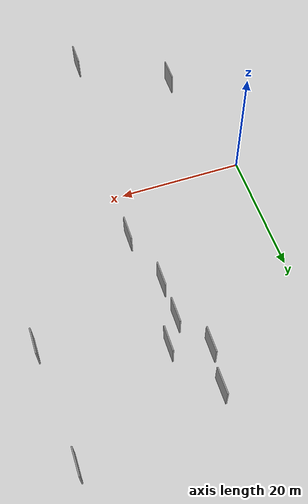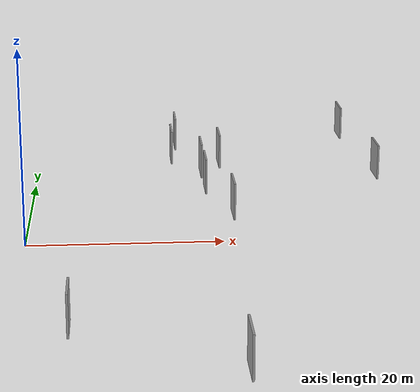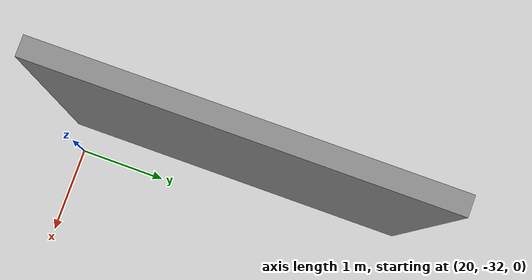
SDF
<sdf version="1.6">
 <world name="default">
  <scene>
   <sky><clouds><speed>12</speed></clouds></sky>
   <ambient>0.4 0.4 0.4 1</ambient>
   <background>0.7 0.7 0.7 1</background>
   <shadows>1</shadows>
  </scene>
  <gravity>0 0 -9.8066</gravity>
  <magnetic_field>6e-06 2.3e-05 -4.2e-05</magnetic_field>
  <physics default="0" name="default_physics" type="ode">
   <ode>
    <solver>
     <type>quick</type>
     <iters>10</iters>
     <sor>1.0</sor>
     <use_dynamic_moi_rescaling>0</use_dynamic_moi_rescaling>
    </solver>
    <constraints>
     <cfm>0</cfm>
     <erp>0.2</erp>
     <contact_max_correcting_vel>100</contact_max_correcting_vel>
     <contact_surface_layer>0.001</contact_surface_layer>
    </constraints>
   </ode>
   <max_step_size>0.004</max_step_size>
   <real_time_factor>1</real_time_factor>
   <real_time_update_rate>250</real_time_update_rate>
  </physics>
  <light name="sun" type="directional">
   <pose>0 0 10 0 0 0</pose>
   <diffuse>0.8 0.8 0.8 1</diffuse>
   <specular>0.2 0.2 0.2 1</specular>
   <attenuation>
    <range>1000</range>
    <constant>0.9</constant>
    <linear>0.01</linear>
    <quadratic>0.001</quadratic>
   </attenuation>
   <direction>-0.5 0.1 -0.9</direction>
  </light>
  <model name="grey_wall_1">
   <static>1</static>
   <pose>21.6217 8.4626 0.0 0.000000 0.000000 1.570796</pose>
   <link name="link">
    <pose>0 0 2.00 0 0 0</pose>
    <collision name="collision"><geometry><box><size>4.00 0.2 4.00</size></box></geometry></collision>
    <visual name="visual">
     <cast_shadows>0</cast_shadows>
     <geometry><box><size>4.00 0.2 4.00</size></box></geometry>
     <material>
      <script>
       <uri>model://grey_wall/materials/scripts</uri>
       <uri>model://grey_wall/materials/textures</uri>
       <name>vrc/grey_wall</name>
      </script>
     </material>
    </visual>
   </link>
  </model>
  <model name="grey_wall_2">
   <static>1</static>
   <pose>19.2359 17.7128 0.0 0.000000 0.000000 1.570796</pose>
   <link name="link">
    <pose>0 0 2.00 0 0 0</pose>
    <collision name="collision"><geometry><box><size>4.00 0.2 4.00</size></box></geometry></collision>
    <visual name="visual">
     <cast_shadows>0</cast_shadows>
     <geometry><box><size>4.00 0.2 4.00</size></box></geometry>
     <material>
      <script>
       <uri>model://grey_wall/materials/scripts</uri>
       <uri>model://grey_wall/materials/textures</uri>
       <name>vrc/grey_wall</name>
      </script>
     </material>
    </visual>
   </link>
  </model>
  <model name="grey_wall_3">
   <static>1</static>
   <pose>16.5954 35.9481 0.0 0.000000 0.000000 1.570796</pose>
   <link name="link">
    <pose>0 0 2.00 0 0 0</pose>
    <collision name="collision"><geometry><box><size>4.00 0.2 4.00</size></box></geometry></collision>
    <visual name="visual">
     <cast_shadows>0</cast_shadows>
     <geometry><box><size>4.00 0.2 4.00</size></box></geometry>
     <material>
      <script>
       <uri>model://grey_wall/materials/scripts</uri>
       <uri>model://grey_wall/materials/textures</uri>
       <name>vrc/grey_wall</name>
      </script>
     </material>
    </visual>
   </link>
  </model>
  <model name="grey_wall_4">
   <static>1</static>
   <pose>39.5391 22.0478 0.0 0.000000 0.000000 1.570796</pose>
   <link name="link">
    <pose>0 0 2.00 0 0 0</pose>
    <collision name="collision"><geometry><box><size>4.00 0.2 4.00</size></box></geometry></collision>
    <visual name="visual">
     <cast_shadows>0</cast_shadows>
     <geometry><box><size>4.00 0.2 4.00</size></box></geometry>
     <material>
      <script>
       <uri>model://grey_wall/materials/scripts</uri>
       <uri>model://grey_wall/materials/textures</uri>
       <name>vrc/grey_wall</name>
      </script>
     </material>
    </visual>
   </link>
  </model>
  <model name="grey_wall_5">
   <static>1</static>
   <pose>15.8792 29.8159 0.0 0.000000 0.000000 1.570796</pose>
   <link name="link">
    <pose>0 0 2.00 0 0 0</pose>
    <collision name="collision"><geometry><box><size>4.00 0.2 4.00</size></box></geometry></collision>
    <visual name="visual">
     <cast_shadows>0</cast_shadows>
     <geometry><box><size>4.00 0.2 4.00</size></box></geometry>
     <material>
      <script>
       <uri>model://grey_wall/materials/scripts</uri>
       <uri>model://grey_wall/materials/textures</uri>
       <name>vrc/grey_wall</name>
      </script>
     </material>
    </visual>
   </link>
  </model>
  <model name="grey_wall_6">
   <static>1</static>
   <pose>19.1286 23.8736 0.0 0.000000 0.000000 1.570796</pose>
   <link name="link">
    <pose>0 0 2.00 0 0 0</pose>
    <collision name="collision"><geometry><box><size>4.00 0.2 4.00</size></box></geometry></collision>
    <visual name="visual">
     <cast_shadows>0</cast_shadows>
     <geometry><box><size>4.00 0.2 4.00</size></box></geometry>
     <material>
      <script>
       <uri>model://grey_wall/materials/scripts</uri>
       <uri>model://grey_wall/materials/textures</uri>
       <name>vrc/grey_wall</name>
      </script>
     </material>
    </visual>
   </link>
  </model>
  <model name="grey_wall_7">
   <static>1</static>
   <pose>38.1219 39.9210 0.0 0.000000 0.000000 1.570796</pose>
   <link name="link">
    <pose>0 0 2.00 0 0 0</pose>
    <collision name="collision"><geometry><box><size>4.00 0.2 4.00</size></box></geometry></collision>
    <visual name="visual">
     <cast_shadows>0</cast_shadows>
     <geometry><box><size>4.00 0.2 4.00</size></box></geometry>
     <material>
      <script>
       <uri>model://grey_wall/materials/scripts</uri>
       <uri>model://grey_wall/materials/textures</uri>
       <name>vrc/grey_wall</name>
      </script>
     </material>
    </visual>
   </link>
  </model>
  <model name="grey_wall_8">
   <static>1</static>
   <pose>4.9388 -21.0558 0.0 0.000000 0.000000 1.570796</pose>
   <link name="link">
    <pose>0 0 2.00 0 0 0</pose>
    <collision name="collision"><geometry><box><size>4.00 0.2 4.00</size></box></geometry></collision>
    <visual name="visual">
     <cast_shadows>0</cast_shadows>
     <geometry><box><size>4.00 0.2 4.00</size></box></geometry>
     <material>
      <script>
       <uri>model://grey_wall/materials/scripts</uri>
       <uri>model://grey_wall/materials/textures</uri>
       <name>vrc/grey_wall</name>
      </script>
     </material>
    </visual>
   </link>
  </model>
  <model name="grey_wall_9">
   <static>1</static>
   <pose>21.5290 27.7792 0.0 0.000000 0.000000 1.570796</pose>
   <link name="link">
    <pose>0 0 2.00 0 0 0</pose>
    <collision name="collision"><geometry><box><size>4.00 0.2 4.00</size></box></geometry></collision>
    <visual name="visual">
     <cast_shadows>0</cast_shadows>
     <geometry><box><size>4.00 0.2 4.00</size></box></geometry>
     <material>
      <script>
       <uri>model://grey_wall/materials/scripts</uri>
       <uri>model://grey_wall/materials/textures</uri>
       <name>vrc/grey_wall</name>
      </script>
     </material>
    </visual>
   </link>
  </model>
  <model name="grey_wall_10">
   <static>1</static>
   <pose>19.6167 -30.1754 0.0 0.000000 0.000000 1.570796</pose>
   <link name="link">
    <pose>0 0 2.00 0 0 0</pose>
    <collision name="collision"><geometry><box><size>4.00 0.2 4.00</size></box></geometry></collision>
    <visual name="visual">
     <cast_shadows>0</cast_shadows>
     <geometry><box><size>4.00 0.2 4.00</size></box></geometry>
     <material>
      <script>
       <uri>model://grey_wall/materials/scripts</uri>
       <uri>model://grey_wall/materials/textures</uri>
       <name>vrc/grey_wall</name>
      </script>
     </material>
    </visual>
   </link>
  </model>
 </world>
</sdf>
